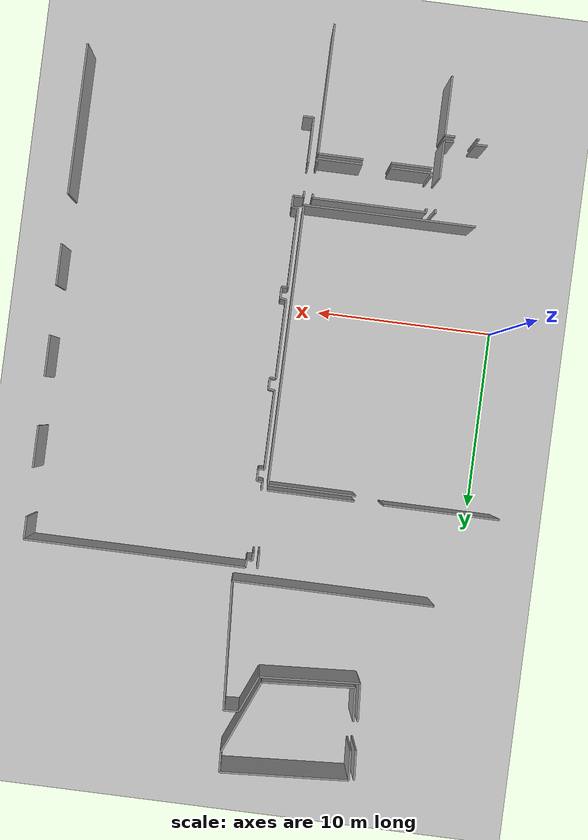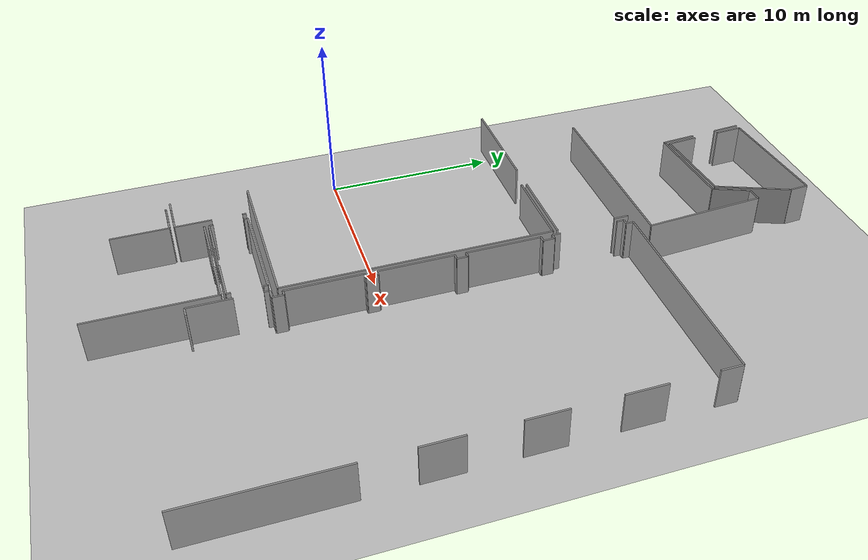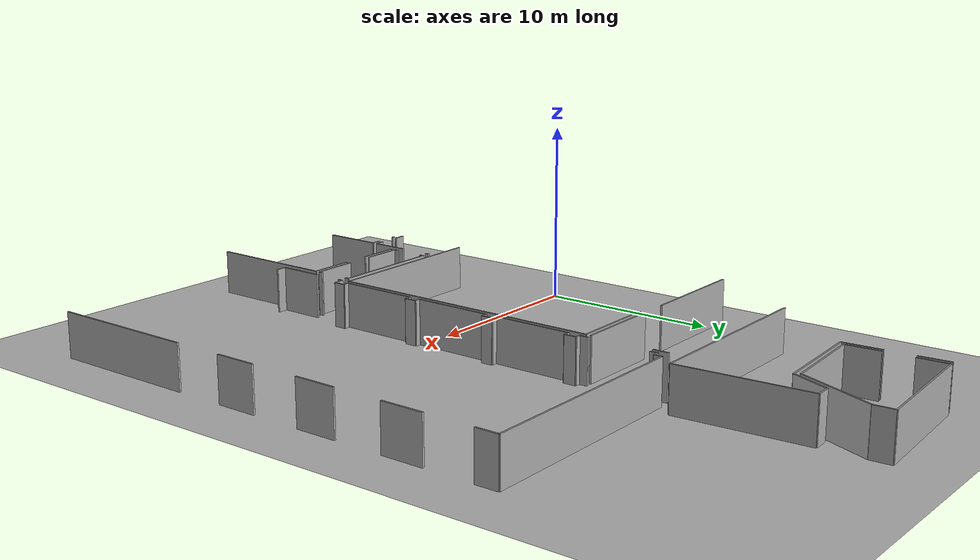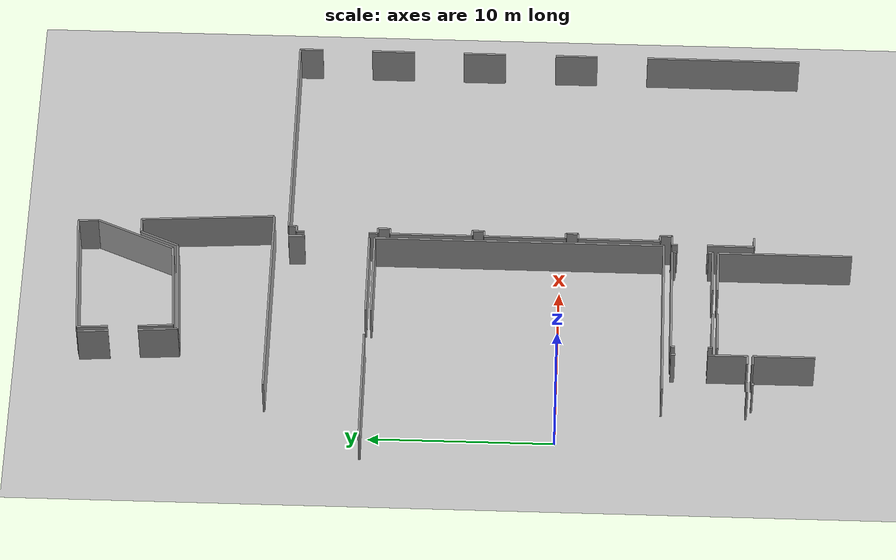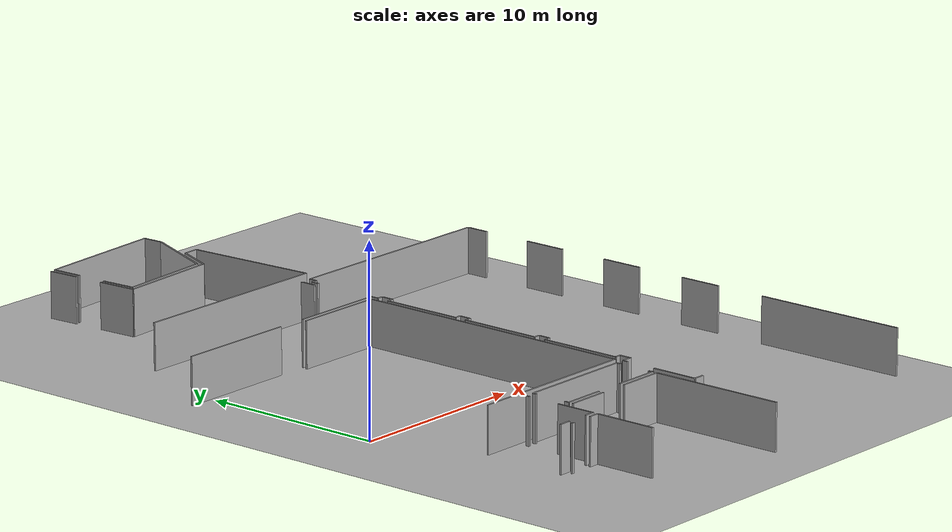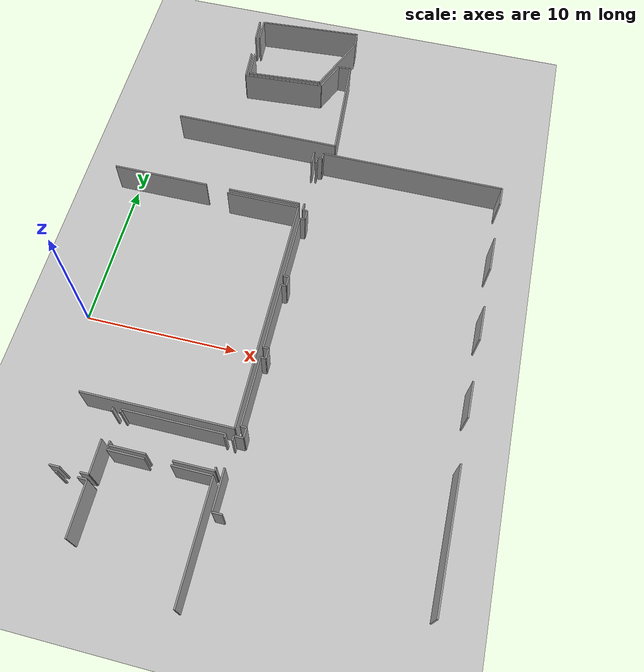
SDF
<sdf version="1.6">
 <world name="default">
  <model name="ground_plane">
   <static>1</static>
   <link name="link">
    <collision name="collision">
     <geometry><plane><normal>0 0 1</normal><size>100 100</size></plane></geometry>
     <surface><friction><ode><mu>100</mu><mu2>50</mu2></ode></friction></surface>
    </collision>
    <visual name="visual">
     <cast_shadows>0</cast_shadows>
     <geometry><plane><normal>0 0 1</normal><size>100 100</size></plane></geometry>
     <material>
      <script><uri>file://media/materials/scripts/gazebo.material</uri><name>Gazebo/Grey</name></script>
     </material>
    </visual>
   </link>
  </model>
  <model name="50025630">
   <static>1</static>
   <link name="Wall_0">
    <collision name="Wall_0_Collision">
     <geometry><box><size>11.3128901363 0.1 2.5</size></box></geometry>
     <pose>5.65644506817 0 1.25 0 0 0</pose>
    </collision>
    <visual name="Wall_0_Visual">
     <pose>5.65644506817 0 1.25 0 0 0</pose>
     <geometry><box><size>11.3128901363 0.1 2.5</size></box></geometry>
     <material>
      <script><uri>file://media/materials/scripts/gazebo.material</uri><name>Gazebo/Grey</name></script>
      <ambient>1 1 1 1</ambient>
     </material>
    </visual>
    <pose>38.7109228649 -10.6291077427 0 0 0 3.14159265359</pose>
   </link>
   <link name="Wall_3">
    <collision name="Wall_3_Collision">
     <geometry><box><size>1.67304815037 0.1 2.5</size></box></geometry>
     <pose>0.836524075186 0 1.25 0 0 0</pose>
    </collision>
    <visual name="Wall_3_Visual">
     <pose>0.836524075186 0 1.25 0 0 0</pose>
     <geometry><box><size>1.67304815037 0.1 2.5</size></box></geometry>
     <material>
      <script><uri>file://media/materials/scripts/gazebo.material</uri><name>Gazebo/Grey</name></script>
      <ambient>1 1 1 1</ambient>
     </material>
    </visual>
    <pose>30.5885938899 -0.484007188351 0 0 0 -1.50181448952</pose>
   </link>
   <link name="Wall_4">
    <collision name="Wall_4_Collision">
     <geometry><box><size>2.11933940147 0.1 2.5</size></box></geometry>
     <pose>1.05966970073 0 1.25 0 0 0</pose>
    </collision>
    <visual name="Wall_4_Visual">
     <pose>1.05966970073 0 1.25 0 0 0</pose>
     <geometry><box><size>2.11933940147 0.1 2.5</size></box></geometry>
     <material>
      <script><uri>file://media/materials/scripts/gazebo.material</uri><name>Gazebo/Grey</name></script>
      <ambient>1 1 1 1</ambient>
     </material>
    </visual>
    <pose>30.8034824133 -3.75216698311 0 0 0 -1.50477028506</pose>
   </link>
   <link name="Wall_5">
    <collision name="Wall_5_Collision">
     <geometry><box><size>5.61351934982 0.1 2.5</size></box></geometry>
     <pose>2.80675967491 0 1.25 0 0 0</pose>
    </collision>
    <visual name="Wall_5_Visual">
     <pose>2.80675967491 0 1.25 0 0 0</pose>
     <geometry><box><size>5.61351934982 0.1 2.5</size></box></geometry>
     <material>
      <script><uri>file://media/materials/scripts/gazebo.material</uri><name>Gazebo/Grey</name></script>
      <ambient>1 1 1 1</ambient>
     </material>
    </visual>
    <pose>30.9433123567 -5.866888498 0 0 0 0.0620307098715</pose>
   </link>
   <link name="Wall_6">
    <collision name="Wall_6_Collision">
     <geometry><box><size>2.22121321932 0.1 2.5</size></box></geometry>
     <pose>1.11060660966 0 1.25 0 0 0</pose>
    </collision>
    <visual name="Wall_6_Visual">
     <pose>1.11060660966 0 1.25 0 0 0</pose>
     <geometry><box><size>2.22121321932 0.1 2.5</size></box></geometry>
     <material>
      <script><uri>file://media/materials/scripts/gazebo.material</uri><name>Gazebo/Grey</name></script>
      <ambient>1 1 1 1</ambient>
     </material>
    </visual>
    <pose>36.546035294 -5.51890117287 0 0 0 1.16686553003</pose>
   </link>
   <link name="Wall_7">
    <collision name="Wall_7_Collision">
     <geometry><box><size>0.85191448878 0.1 2.5</size></box></geometry>
     <pose>0.42595724439 0 1.25 0 0 0</pose>
    </collision>
    <visual name="Wall_7_Visual">
     <pose>0.42595724439 0 1.25 0 0 0</pose>
     <geometry><box><size>0.85191448878 0.1 2.5</size></box></geometry>
     <material>
      <script><uri>file://media/materials/scripts/gazebo.material</uri><name>Gazebo/Grey</name></script>
      <ambient>1 1 1 1</ambient>
     </material>
    </visual>
    <pose>37.419051671 -3.47644417915 0 0 0 0.0451863527041</pose>
   </link>
   <link name="Wall_8">
    <collision name="Wall_8_Collision">
     <geometry><box><size>7.20464430718 0.1 2.5</size></box></geometry>
     <pose>3.60232215359 0 1.25 0 0 0</pose>
    </collision>
    <visual name="Wall_8_Visual">
     <pose>3.60232215359 0 1.25 0 0 0</pose>
     <geometry><box><size>7.20464430718 0.1 2.5</size></box></geometry>
     <material>
      <script><uri>file://media/materials/scripts/gazebo.material</uri><name>Gazebo/Grey</name></script>
      <ambient>1 1 1 1</ambient>
     </material>
    </visual>
    <pose>38.2700965855 -3.43796236911 0 0 0 -1.50957168</pose>
   </link>
   <link name="Wall_9">
    <collision name="Wall_9_Collision">
     <geometry><box><size>5.19604761874 0.1 2.5</size></box></geometry>
     <pose>2.59802380937 0 1.25 0 0 0</pose>
    </collision>
    <visual name="Wall_9_Visual">
     <pose>2.59802380937 0 1.25 0 0 0</pose>
     <geometry><box><size>5.19604761874 0.1 2.5</size></box></geometry>
     <material>
      <script><uri>file://media/materials/scripts/gazebo.material</uri><name>Gazebo/Grey</name></script>
      <ambient>1 1 1 1</ambient>
     </material>
    </visual>
    <pose>36.3642944684 -5.25092553198 0 0 0 -3.07346853266</pose>
   </link>
   <link name="Wall_10">
    <collision name="Wall_10_Collision">
     <geometry><box><size>1.88013856062 0.1 2.5</size></box></geometry>
     <pose>0.940069280308 0 1.25 0 0 0</pose>
    </collision>
    <visual name="Wall_10_Visual">
     <pose>0.940069280308 0 1.25 0 0 0</pose>
     <geometry><box><size>1.88013856062 0.1 2.5</size></box></geometry>
     <material>
      <script><uri>file://media/materials/scripts/gazebo.material</uri><name>Gazebo/Grey</name></script>
      <ambient>1 1 1 1</ambient>
     </material>
    </visual>
    <pose>31.1802993453 -5.60462797742 0 0 0 1.64144444996</pose>
   </link>
   <link name="Wall_11">
    <collision name="Wall_11_Collision">
     <geometry><box><size>1.65555187292 0.1 2.5</size></box></geometry>
     <pose>0.827775936462 0 1.25 0 0 0</pose>
    </collision>
    <visual name="Wall_11_Visual">
     <pose>0.827775936462 0 1.25 0 0 0</pose>
     <geometry><box><size>1.65555187292 0.1 2.5</size></box></geometry>
     <material>
      <script><uri>file://media/materials/scripts/gazebo.material</uri><name>Gazebo/Grey</name></script>
      <ambient>1 1 1 1</ambient>
     </material>
    </visual>
    <pose>30.9783650946 -2.10329127428 0 0 0 1.6212182583</pose>
   </link>
   <link name="Wall_12">
    <collision name="Wall_12_Collision">
     <geometry><box><size>7.18796307105 0.1 2.5</size></box></geometry>
     <pose>3.59398153552 0 1.25 0 0 0</pose>
    </collision>
    <visual name="Wall_12_Visual">
     <pose>3.59398153552 0 1.25 0 0 0</pose>
     <geometry><box><size>7.18796307105 0.1 2.5</size></box></geometry>
     <material>
      <script><uri>file://media/materials/scripts/gazebo.material</uri><name>Gazebo/Grey</name></script>
      <ambient>1 1 1 1</ambient>
     </material>
    </visual>
    <pose>30.8949243382 -0.449843469205 0 0 0 0.0626238097837</pose>
   </link>
   <link name="Wall_13">
    <collision name="Wall_13_Collision">
     <geometry><box><size>1.10530514953 0.1 2.5</size></box></geometry>
     <pose>0.552652574765 0 1.25 0 0 0</pose>
    </collision>
    <visual name="Wall_13_Visual">
     <pose>0.552652574765 0 1.25 0 0 0</pose>
     <geometry><box><size>1.10530514953 0.1 2.5</size></box></geometry>
     <material>
      <script><uri>file://media/materials/scripts/gazebo.material</uri><name>Gazebo/Grey</name></script>
      <ambient>1 1 1 1</ambient>
     </material>
    </visual>
    <pose>38.0687973482 -0.0 0 0 0 -1.51826157845</pose>
   </link>
   <link name="Wall_14">
    <collision name="Wall_14_Collision">
     <geometry><box><size>4.50614827792 0.1 2.5</size></box></geometry>
     <pose>2.25307413896 0 1.25 0 0 0</pose>
    </collision>
    <visual name="Wall_14_Visual">
     <pose>2.25307413896 0 1.25 0 0 0</pose>
     <geometry><box><size>4.50614827792 0.1 2.5</size></box></geometry>
     <material>
      <script><uri>file://media/materials/scripts/gazebo.material</uri><name>Gazebo/Grey</name></script>
      <ambient>1 1 1 1</ambient>
     </material>
    </visual>
    <pose>38.1268375699 -1.10378023457 0 0 0 -1.97266827118</pose>
   </link>
   <link name="Wall_15">
    <collision name="Wall_15_Collision">
     <geometry><box><size>4.88731687802 0.1 2.5</size></box></geometry>
     <pose>2.44365843901 0 1.25 0 0 0</pose>
    </collision>
    <visual name="Wall_15_Visual">
     <pose>2.44365843901 0 1.25 0 0 0</pose>
     <geometry><box><size>4.88731687802 0.1 2.5</size></box></geometry>
     <material>
      <script><uri>file://media/materials/scripts/gazebo.material</uri><name>Gazebo/Grey</name></script>
      <ambient>1 1 1 1</ambient>
     </material>
    </visual>
    <pose>37.4187976657 -15.8639039352 0 0 0 3.14159265359</pose>
   </link>
   <link name="Wall_16">
    <collision name="Wall_16_Collision">
     <geometry><box><size>6.50520393454 0.1 2.5</size></box></geometry>
     <pose>3.25260196727 0 1.25 0 0 0</pose>
    </collision>
    <visual name="Wall_16_Visual">
     <pose>3.25260196727 0 1.25 0 0 0</pose>
     <geometry><box><size>6.50520393454 0.1 2.5</size></box></geometry>
     <material>
      <script><uri>file://media/materials/scripts/gazebo.material</uri><name>Gazebo/Grey</name></script>
      <ambient>1 1 1 1</ambient>
     </material>
    </visual>
    <pose>30.9283260413 -15.8639039352 0 0 0 3.14159265359</pose>
   </link>
   <link name="Wall_22">
    <collision name="Wall_22_Collision">
     <geometry><box><size>0.875775525954 0.1 2.5</size></box></geometry>
     <pose>0.437887762977 0 1.25 0 0 0</pose>
    </collision>
    <visual name="Wall_22_Visual">
     <pose>0.437887762977 0 1.25 0 0 0</pose>
     <geometry><box><size>0.875775525954 0.1 2.5</size></box></geometry>
     <material>
      <script><uri>file://media/materials/scripts/gazebo.material</uri><name>Gazebo/Grey</name></script>
      <ambient>1 1 1 1</ambient>
     </material>
    </visual>
    <pose>37.4060973984 -11.476342577 0 0 0 -1.55629408033</pose>
   </link>
   <link name="Wall_23">
    <collision name="Wall_23_Collision">
     <geometry><box><size>9.59695701595 0.1 2.5</size></box></geometry>
     <pose>4.79847850797 0 1.25 0 0 0</pose>
    </collision>
    <visual name="Wall_23_Visual">
     <pose>4.79847850797 0 1.25 0 0 0</pose>
     <geometry><box><size>9.59695701595 0.1 2.5</size></box></geometry>
     <material>
      <script><uri>file://media/materials/scripts/gazebo.material</uri><name>Gazebo/Grey</name></script>
      <ambient>1 1 1 1</ambient>
     </material>
    </visual>
    <pose>37.4077484331 -31.8441423192 0 0 0 3.14159265359</pose>
   </link>
   <link name="Wall_29">
    <collision name="Wall_29_Collision">
     <geometry><box><size>4.92617969608 0.1 2.5</size></box></geometry>
     <pose>2.46308984804 0 1.25 0 0 0</pose>
    </collision>
    <visual name="Wall_29_Visual">
     <pose>2.46308984804 0 1.25 0 0 0</pose>
     <geometry><box><size>4.92617969608 0.1 2.5</size></box></geometry>
     <material>
      <script><uri>file://media/materials/scripts/gazebo.material</uri><name>Gazebo/Grey</name></script>
      <ambient>1 1 1 1</ambient>
     </material>
    </visual>
    <pose>32.4822037504 -16.1566450974 0 0 0 0.0</pose>
   </link>
   <link name="Wall_30">
    <collision name="Wall_30_Collision">
     <geometry><box><size>15.6874972347 0.1 2.5</size></box></geometry>
     <pose>7.84374861733 0 1.25 0 0 0</pose>
    </collision>
    <visual name="Wall_30_Visual">
     <pose>7.84374861733 0 1.25 0 0 0</pose>
     <geometry><box><size>15.6874972347 0.1 2.5</size></box></geometry>
     <material>
      <script><uri>file://media/materials/scripts/gazebo.material</uri><name>Gazebo/Grey</name></script>
      <ambient>1 1 1 1</ambient>
     </material>
    </visual>
    <pose>37.4083834465 -16.1566450974 0 0 0 -1.57083680574</pose>
   </link>
   <link name="Wall_40">
    <collision name="Wall_40_Collision">
     <geometry><box><size>0.596785562336 0.1 2.5</size></box></geometry>
     <pose>0.298392781168 0 1.25 0 0 0</pose>
    </collision>
    <visual name="Wall_40_Visual">
     <pose>0.298392781168 0 1.25 0 0 0</pose>
     <geometry><box><size>0.596785562336 0.1 2.5</size></box></geometry>
     <material>
      <script><uri>file://media/materials/scripts/gazebo.material</uri><name>Gazebo/Grey</name></script>
      <ambient>1 1 1 1</ambient>
     </material>
    </visual>
    <pose>38.0750204792 -36.7248550582 0 0 0 3.14159265359</pose>
   </link>
   <link name="Wall_41">
    <collision name="Wall_41_Collision">
     <geometry><box><size>2.52811521683 0.1 2.5</size></box></geometry>
     <pose>1.26405760841 0 1.25 0 0 0</pose>
    </collision>
    <visual name="Wall_41_Visual">
     <pose>1.26405760841 0 1.25 0 0 0</pose>
     <geometry><box><size>2.52811521683 0.1 2.5</size></box></geometry>
     <material>
      <script><uri>file://media/materials/scripts/gazebo.material</uri><name>Gazebo/Grey</name></script>
      <ambient>1 1 1 1</ambient>
     </material>
    </visual>
    <pose>37.4782349168 -36.7248550582 0 0 0 1.57079632679</pose>
   </link>
   <link name="Wall_42">
    <collision name="Wall_42_Collision">
     <geometry><box><size>0.315220635394 0.1 2.5</size></box></geometry>
     <pose>0.157610317697 0 1.25 0 0 0</pose>
    </collision>
    <visual name="Wall_42_Visual">
     <pose>0.157610317697 0 1.25 0 0 0</pose>
     <geometry><box><size>0.315220635394 0.1 2.5</size></box></geometry>
     <material>
      <script><uri>file://media/materials/scripts/gazebo.material</uri><name>Gazebo/Grey</name></script>
      <ambient>1 1 1 1</ambient>
     </material>
    </visual>
    <pose>37.4782349168 -32.5901560228 0 0 0 1.57079632679</pose>
   </link>
   <link name="Wall_43">
    <collision name="Wall_43_Collision">
     <geometry><box><size>0.582434260241 0.1 2.5</size></box></geometry>
     <pose>0.291217130121 0 1.25 0 0 0</pose>
    </collision>
    <visual name="Wall_43_Visual">
     <pose>0.291217130121 0 1.25 0 0 0</pose>
     <geometry><box><size>0.582434260241 0.1 2.5</size></box></geometry>
     <material>
      <script><uri>file://media/materials/scripts/gazebo.material</uri><name>Gazebo/Grey</name></script>
      <ambient>1 1 1 1</ambient>
     </material>
    </visual>
    <pose>37.4782349168 -32.2749353874 0 0 0 0.0</pose>
   </link>
   <link name="Wall_44">
    <collision name="Wall_44_Collision">
     <geometry><box><size>0.649237666453 0.1 2.5</size></box></geometry>
     <pose>0.324618833226 0 1.25 0 0 0</pose>
    </collision>
    <visual name="Wall_44_Visual">
     <pose>0.324618833226 0 1.25 0 0 0</pose>
     <geometry><box><size>0.649237666453 0.1 2.5</size></box></geometry>
     <material>
      <script><uri>file://media/materials/scripts/gazebo.material</uri><name>Gazebo/Grey</name></script>
      <ambient>1 1 1 1</ambient>
     </material>
    </visual>
    <pose>38.0606691771 -32.2749353874 0 0 0 1.57079632679</pose>
   </link>
   <link name="Wall_45">
    <collision name="Wall_45_Collision">
     <geometry><box><size>0.348495335827 0.1 2.5</size></box></geometry>
     <pose>0.174247667913 0 1.25 0 0 0</pose>
    </collision>
    <visual name="Wall_45_Visual">
     <pose>0.174247667913 0 1.25 0 0 0</pose>
     <geometry><box><size>0.348495335827 0.1 2.5</size></box></geometry>
     <material>
      <script><uri>file://media/materials/scripts/gazebo.material</uri><name>Gazebo/Grey</name></script>
      <ambient>1 1 1 1</ambient>
     </material>
    </visual>
    <pose>38.0606691771 -31.6256977209 0 0 0 3.14159265359</pose>
   </link>
   <link name="Wall_46">
    <collision name="Wall_46_Collision">
     <geometry><box><size>4.43506035802 0.1 2.5</size></box></geometry>
     <pose>2.21753017901 0 1.25 0 0 0</pose>
    </collision>
    <visual name="Wall_46_Visual">
     <pose>2.21753017901 0 1.25 0 0 0</pose>
     <geometry><box><size>4.43506035802 0.1 2.5</size></box></geometry>
     <material>
      <script><uri>file://media/materials/scripts/gazebo.material</uri><name>Gazebo/Grey</name></script>
      <ambient>1 1 1 1</ambient>
     </material>
    </visual>
    <pose>37.7121738413 -31.6256977209 0 0 0 1.57079632679</pose>
   </link>
   <link name="Wall_47">
    <collision name="Wall_47_Collision">
     <geometry><box><size>0.338335121954 0.1 2.5</size></box></geometry>
     <pose>0.169167560977 0 1.25 0 0 0</pose>
    </collision>
    <visual name="Wall_47_Visual">
     <pose>0.169167560977 0 1.25 0 0 0</pose>
     <geometry><box><size>0.338335121954 0.1 2.5</size></box></geometry>
     <material>
      <script><uri>file://media/materials/scripts/gazebo.material</uri><name>Gazebo/Grey</name></script>
      <ambient>1 1 1 1</ambient>
     </material>
    </visual>
    <pose>37.7121738413 -27.1906373629 0 0 0 0.0</pose>
   </link>
   <link name="Wall_48">
    <collision name="Wall_48_Collision">
     <geometry><box><size>0.669939102218 0.1 2.5</size></box></geometry>
     <pose>0.334969551109 0 1.25 0 0 0</pose>
    </collision>
    <visual name="Wall_48_Visual">
     <pose>0.334969551109 0 1.25 0 0 0</pose>
     <geometry><box><size>0.669939102218 0.1 2.5</size></box></geometry>
     <material>
      <script><uri>file://media/materials/scripts/gazebo.material</uri><name>Gazebo/Grey</name></script>
      <ambient>1 1 1 1</ambient>
     </material>
    </visual>
    <pose>38.0505089632 -27.1906373629 0 0 0 1.57079632679</pose>
   </link>
   <link name="Wall_49">
    <collision name="Wall_49_Collision">
     <geometry><box><size>0.335033052446 0.1 2.5</size></box></geometry>
     <pose>0.167516526223 0 1.25 0 0 0</pose>
    </collision>
    <visual name="Wall_49_Visual">
     <pose>0.167516526223 0 1.25 0 0 0</pose>
     <geometry><box><size>0.335033052446 0.1 2.5</size></box></geometry>
     <material>
      <script><uri>file://media/materials/scripts/gazebo.material</uri><name>Gazebo/Grey</name></script>
      <ambient>1 1 1 1</ambient>
     </material>
    </visual>
    <pose>38.0505089632 -26.5206982607 0 0 0 3.14159265359</pose>
   </link>
   <link name="Wall_50">
    <collision name="Wall_50_Collision">
     <geometry><box><size>4.43645738743 0.1 2.5</size></box></geometry>
     <pose>2.21822869371 0 1.25 0 0 0</pose>
    </collision>
    <visual name="Wall_50_Visual">
     <pose>2.21822869371 0 1.25 0 0 0</pose>
     <geometry><box><size>4.43645738743 0.1 2.5</size></box></geometry>
     <material>
      <script><uri>file://media/materials/scripts/gazebo.material</uri><name>Gazebo/Grey</name></script>
      <ambient>1 1 1 1</ambient>
     </material>
    </visual>
    <pose>37.7154759108 -26.5206982607 0 0 0 1.57079632679</pose>
   </link>
   <link name="Wall_51">
    <collision name="Wall_51_Collision">
     <geometry><box><size>0.345955282359 0.1 2.5</size></box></geometry>
     <pose>0.172977641179 0 1.25 0 0 0</pose>
    </collision>
    <visual name="Wall_51_Visual">
     <pose>0.172977641179 0 1.25 0 0 0</pose>
     <geometry><box><size>0.345955282359 0.1 2.5</size></box></geometry>
     <material>
      <script><uri>file://media/materials/scripts/gazebo.material</uri><name>Gazebo/Grey</name></script>
      <ambient>1 1 1 1</ambient>
     </material>
    </visual>
    <pose>37.7154759108 -22.0842408733 0 0 0 0.0</pose>
   </link>
   <link name="Wall_52">
    <collision name="Wall_52_Collision">
     <geometry><box><size>0.653301752002 0.1 2.5</size></box></geometry>
     <pose>0.326650876001 0 1.25 0 0 0</pose>
    </collision>
    <visual name="Wall_52_Visual">
     <pose>0.326650876001 0 1.25 0 0 0</pose>
     <geometry><box><size>0.653301752002 0.1 2.5</size></box></geometry>
     <material>
      <script><uri>file://media/materials/scripts/gazebo.material</uri><name>Gazebo/Grey</name></script>
      <ambient>1 1 1 1</ambient>
     </material>
    </visual>
    <pose>38.0614311931 -22.0842408733 0 0 0 1.57079632679</pose>
   </link>
   <link name="Wall_53">
    <collision name="Wall_53_Collision">
     <geometry><box><size>0.345955282359 0.1 2.5</size></box></geometry>
     <pose>0.172977641179 0 1.25 0 0 0</pose>
    </collision>
    <visual name="Wall_53_Visual">
     <pose>0.172977641179 0 1.25 0 0 0</pose>
     <geometry><box><size>0.345955282359 0.1 2.5</size></box></geometry>
     <material>
      <script><uri>file://media/materials/scripts/gazebo.material</uri><name>Gazebo/Grey</name></script>
      <ambient>1 1 1 1</ambient>
     </material>
    </visual>
    <pose>38.0614311931 -21.4309391213 0 0 0 3.14159265359</pose>
   </link>
   <link name="Wall_54">
    <collision name="Wall_54_Collision">
     <geometry><box><size>4.44204550506 0.1 2.5</size></box></geometry>
     <pose>2.22102275253 0 1.25 0 0 0</pose>
    </collision>
    <visual name="Wall_54_Visual">
     <pose>2.22102275253 0 1.25 0 0 0</pose>
     <geometry><box><size>4.44204550506 0.1 2.5</size></box></geometry>
     <material>
      <script><uri>file://media/materials/scripts/gazebo.material</uri><name>Gazebo/Grey</name></script>
      <ambient>1 1 1 1</ambient>
     </material>
    </visual>
    <pose>37.7154759108 -21.4309391213 0 0 0 1.57079632679</pose>
   </link>
   <link name="Wall_55">
    <collision name="Wall_55_Collision">
     <geometry><box><size>0.340494167402 0.1 2.5</size></box></geometry>
     <pose>0.170247083701 0 1.25 0 0 0</pose>
    </collision>
    <visual name="Wall_55_Visual">
     <pose>0.170247083701 0 1.25 0 0 0</pose>
     <geometry><box><size>0.340494167402 0.1 2.5</size></box></geometry>
     <material>
      <script><uri>file://media/materials/scripts/gazebo.material</uri><name>Gazebo/Grey</name></script>
      <ambient>1 1 1 1</ambient>
     </material>
    </visual>
    <pose>37.7154759108 -16.9888936162 0 0 0 0.0</pose>
   </link>
   <link name="Wall_56">
    <collision name="Wall_56_Collision">
     <geometry><box><size>0.680734329458 0.1 2.5</size></box></geometry>
     <pose>0.340367164729 0 1.25 0 0 0</pose>
    </collision>
    <visual name="Wall_56_Visual">
     <pose>0.340367164729 0 1.25 0 0 0</pose>
     <geometry><box><size>0.680734329458 0.1 2.5</size></box></geometry>
     <material>
      <script><uri>file://media/materials/scripts/gazebo.material</uri><name>Gazebo/Grey</name></script>
      <ambient>1 1 1 1</ambient>
     </material>
    </visual>
    <pose>38.0559700782 -16.9888936162 0 0 0 1.57079632679</pose>
   </link>
   <link name="Wall_57">
    <collision name="Wall_57_Collision">
     <geometry><box><size>0.323983819859 0.1 2.5</size></box></geometry>
     <pose>0.16199190993 0 1.25 0 0 0</pose>
    </collision>
    <visual name="Wall_57_Visual">
     <pose>0.16199190993 0 1.25 0 0 0</pose>
     <geometry><box><size>0.323983819859 0.1 2.5</size></box></geometry>
     <material>
      <script><uri>file://media/materials/scripts/gazebo.material</uri><name>Gazebo/Grey</name></script>
      <ambient>1 1 1 1</ambient>
     </material>
    </visual>
    <pose>38.0559700782 -16.3081592868 0 0 0 3.14159265359</pose>
   </link>
   <link name="Wall_58">
    <collision name="Wall_58_Collision">
     <geometry><box><size>0.500136527874 0.1 2.5</size></box></geometry>
     <pose>0.250068263937 0 1.25 0 0 0</pose>
    </collision>
    <visual name="Wall_58_Visual">
     <pose>0.250068263937 0 1.25 0 0 0</pose>
     <geometry><box><size>0.500136527874 0.1 2.5</size></box></geometry>
     <material>
      <script><uri>file://media/materials/scripts/gazebo.material</uri><name>Gazebo/Grey</name></script>
      <ambient>1 1 1 1</ambient>
     </material>
    </visual>
    <pose>37.7319862583 -16.3081592868 0 0 0 1.57079632679</pose>
   </link>
   <link name="Wall_59">
    <collision name="Wall_59_Collision">
     <geometry><box><size>0.425839963931 0.1 2.5</size></box></geometry>
     <pose>0.212919981966 0 1.25 0 0 0</pose>
    </collision>
    <visual name="Wall_59_Visual">
     <pose>0.212919981966 0 1.25 0 0 0</pose>
     <geometry><box><size>0.425839963931 0.1 2.5</size></box></geometry>
     <material>
      <script><uri>file://media/materials/scripts/gazebo.material</uri><name>Gazebo/Grey</name></script>
      <ambient>1 1 1 1</ambient>
     </material>
    </visual>
    <pose>37.7319862583 -12.3160842536 0 0 0 1.57079632679</pose>
   </link>
   <link name="Wall_60">
    <collision name="Wall_60_Collision">
     <geometry><box><size>0.336049073833 0.1 2.5</size></box></geometry>
     <pose>0.168024536916 0 1.25 0 0 0</pose>
    </collision>
    <visual name="Wall_60_Visual">
     <pose>0.168024536916 0 1.25 0 0 0</pose>
     <geometry><box><size>0.336049073833 0.1 2.5</size></box></geometry>
     <material>
      <script><uri>file://media/materials/scripts/gazebo.material</uri><name>Gazebo/Grey</name></script>
      <ambient>1 1 1 1</ambient>
     </material>
    </visual>
    <pose>37.7319862583 -11.8902442896 0 0 0 0.0</pose>
   </link>
   <link name="Wall_61">
    <collision name="Wall_61_Collision">
     <geometry><box><size>0.434222140376 0.1 2.5</size></box></geometry>
     <pose>0.217111070188 0 1.25 0 0 0</pose>
    </collision>
    <visual name="Wall_61_Visual">
     <pose>0.217111070188 0 1.25 0 0 0</pose>
     <geometry><box><size>0.434222140376 0.1 2.5</size></box></geometry>
     <material>
      <script><uri>file://media/materials/scripts/gazebo.material</uri><name>Gazebo/Grey</name></script>
      <ambient>1 1 1 1</ambient>
     </material>
    </visual>
    <pose>38.0680353321 -11.8902442896 0 0 0 1.57079632679</pose>
   </link>
   <link name="Wall_62">
    <collision name="Wall_62_Collision">
     <geometry><box><size>12.4085421998 0.1 2.5</size></box></geometry>
     <pose>6.20427109991 0 1.25 0 0 0</pose>
    </collision>
    <visual name="Wall_62_Visual">
     <pose>6.20427109991 0 1.25 0 0 0</pose>
     <geometry><box><size>12.4085421998 0.1 2.5</size></box></geometry>
     <material>
      <script><uri>file://media/materials/scripts/gazebo.material</uri><name>Gazebo/Grey</name></script>
      <ambient>1 1 1 1</ambient>
     </material>
    </visual>
    <pose>38.0680353321 -11.4560221493 0 0 0 0.0</pose>
   </link>
   <link name="Wall_63">
    <collision name="Wall_63_Collision">
     <geometry><box><size>1.26761368327 0.1 2.5</size></box></geometry>
     <pose>0.633806841634 0 1.25 0 0 0</pose>
    </collision>
    <visual name="Wall_63_Visual">
     <pose>0.633806841634 0 1.25 0 0 0</pose>
     <geometry><box><size>1.26761368327 0.1 2.5</size></box></geometry>
     <material>
      <script><uri>file://media/materials/scripts/gazebo.material</uri><name>Gazebo/Grey</name></script>
      <ambient>1 1 1 1</ambient>
     </material>
    </visual>
    <pose>50.476577532 -11.4560221493 0 0 0 -1.57079632679</pose>
   </link>
   <link name="Wall_64">
    <collision name="Wall_64_Collision">
     <geometry><box><size>2.36237672803 0.1 2.5</size></box></geometry>
     <pose>1.18118836402 0 1.25 0 0 0</pose>
    </collision>
    <visual name="Wall_64_Visual">
     <pose>1.18118836402 0 1.25 0 0 0</pose>
     <geometry><box><size>2.36237672803 0.1 2.5</size></box></geometry>
     <material>
      <script><uri>file://media/materials/scripts/gazebo.material</uri><name>Gazebo/Grey</name></script>
      <ambient>1 1 1 1</ambient>
     </material>
    </visual>
    <pose>50.476577532 -15.4605434444 0 0 0 -1.57079632679</pose>
   </link>
   <link name="Wall_65">
    <collision name="Wall_65_Collision">
     <geometry><box><size>2.32427592601 0.1 2.5</size></box></geometry>
     <pose>1.162137963 0 1.25 0 0 0</pose>
    </collision>
    <visual name="Wall_65_Visual">
     <pose>1.162137963 0 1.25 0 0 0</pose>
     <geometry><box><size>2.32427592601 0.1 2.5</size></box></geometry>
     <material>
      <script><uri>file://media/materials/scripts/gazebo.material</uri><name>Gazebo/Grey</name></script>
      <ambient>1 1 1 1</ambient>
     </material>
    </visual>
    <pose>50.476577532 -20.5694799876 0 0 0 -1.57079632679</pose>
   </link>
   <link name="Wall_66">
    <collision name="Wall_66_Collision">
     <geometry><box><size>2.32491093938 0.1 2.5</size></box></geometry>
     <pose>1.16245546969 0 1.25 0 0 0</pose>
    </collision>
    <visual name="Wall_66_Visual">
     <pose>1.16245546969 0 1.25 0 0 0</pose>
     <geometry><box><size>2.32491093938 0.1 2.5</size></box></geometry>
     <material>
      <script><uri>file://media/materials/scripts/gazebo.material</uri><name>Gazebo/Grey</name></script>
      <ambient>1 1 1 1</ambient>
     </material>
    </visual>
    <pose>50.476577532 -25.6751144612 0 0 0 -1.57079632679</pose>
   </link>
   <link name="Wall_67">
    <collision name="Wall_67_Collision">
     <geometry><box><size>8.43249102252 0.1 2.5</size></box></geometry>
     <pose>4.21624551126 0 1.25 0 0 0</pose>
    </collision>
    <visual name="Wall_67_Visual">
     <pose>4.21624551126 0 1.25 0 0 0</pose>
     <geometry><box><size>8.43249102252 0.1 2.5</size></box></geometry>
     <material>
      <script><uri>file://media/materials/scripts/gazebo.material</uri><name>Gazebo/Grey</name></script>
      <ambient>1 1 1 1</ambient>
     </material>
    </visual>
    <pose>50.476577532 -30.7811299428 0 0 0 -1.57305549519</pose>
   </link>
   <link name="Wall_68">
    <collision name="Wall_68_Collision">
     <geometry><box><size>0.545222476933 0.1 2.5</size></box></geometry>
     <pose>0.272611238467 0 1.25 0 0 0</pose>
    </collision>
    <visual name="Wall_68_Visual">
     <pose>0.272611238467 0 1.25 0 0 0</pose>
     <geometry><box><size>0.545222476933 0.1 2.5</size></box></geometry>
     <material>
      <script><uri>file://media/materials/scripts/gazebo.material</uri><name>Gazebo/Grey</name></script>
      <ambient>1 1 1 1</ambient>
     </material>
    </visual>
    <pose>30.1355753539 -36.375343701 0 0 0 3.14159265359</pose>
   </link>
   <link name="Wall_69">
    <collision name="Wall_69_Collision">
     <geometry><box><size>0.658889869632 0.1 2.5</size></box></geometry>
     <pose>0.329444934816 0 1.25 0 0 0</pose>
    </collision>
    <visual name="Wall_69_Visual">
     <pose>0.329444934816 0 1.25 0 0 0</pose>
     <geometry><box><size>0.658889869632 0.1 2.5</size></box></geometry>
     <material>
      <script><uri>file://media/materials/scripts/gazebo.material</uri><name>Gazebo/Grey</name></script>
      <ambient>1 1 1 1</ambient>
     </material>
    </visual>
    <pose>28.3828114582 -36.375343701 0 0 0 3.14159265359</pose>
   </link>
   <link name="Wall_74">
    <collision name="Wall_74_Collision">
     <geometry><box><size>0.222762689155 0.1 2.5</size></box></geometry>
     <pose>0.111381344577 0 1.25 0 0 0</pose>
    </collision>
    <visual name="Wall_74_Visual">
     <pose>0.111381344577 0 1.25 0 0 0</pose>
     <geometry><box><size>0.222762689155 0.1 2.5</size></box></geometry>
     <material>
      <script><uri>file://media/materials/scripts/gazebo.material</uri><name>Gazebo/Grey</name></script>
      <ambient>1 1 1 1</ambient>
     </material>
    </visual>
    <pose>30.1189380036 -32.2950018098 0 0 0 -1.57079632679</pose>
   </link>
   <link name="Wall_75">
    <collision name="Wall_75_Collision">
     <geometry><box><size>2.11173899048 0.1 2.5</size></box></geometry>
     <pose>1.05586949524 0 1.25 0 0 0</pose>
    </collision>
    <visual name="Wall_75_Visual">
     <pose>1.05586949524 0 1.25 0 0 0</pose>
     <geometry><box><size>2.11173899048 0.1 2.5</size></box></geometry>
     <material>
      <script><uri>file://media/materials/scripts/gazebo.material</uri><name>Gazebo/Grey</name></script>
      <ambient>1 1 1 1</ambient>
     </material>
    </visual>
    <pose>30.1189380036 -34.2636702503 0 0 0 -1.56291773838</pose>
   </link>
   <link name="Wall_76">
    <collision name="Wall_76_Collision">
     <geometry><box><size>2.53027426227 0.1 2.5</size></box></geometry>
     <pose>1.26513713114 0 1.25 0 0 0</pose>
    </collision>
    <visual name="Wall_76_Visual">
     <pose>1.26513713114 0 1.25 0 0 0</pose>
     <geometry><box><size>2.53027426227 0.1 2.5</size></box></geometry>
     <material>
      <script><uri>file://media/materials/scripts/gazebo.material</uri><name>Gazebo/Grey</name></script>
      <ambient>1 1 1 1</ambient>
     </material>
    </visual>
    <pose>37.0075630092 -34.503705303 0 0 0 3.14159265359</pose>
   </link>
   <link name="Wall_77">
    <collision name="Wall_77_Collision">
     <geometry><box><size>2.26560069089 0.1 2.5</size></box></geometry>
     <pose>1.13280034545 0 1.25 0 0 0</pose>
    </collision>
    <visual name="Wall_77_Visual">
     <pose>1.13280034545 0 1.25 0 0 0</pose>
     <geometry><box><size>2.26560069089 0.1 2.5</size></box></geometry>
     <material>
      <script><uri>file://media/materials/scripts/gazebo.material</uri><name>Gazebo/Grey</name></script>
      <ambient>1 1 1 1</ambient>
     </material>
    </visual>
    <pose>32.8914063641 -34.503705303 0 0 0 3.14159265359</pose>
   </link>
   <link name="Wall_78">
    <collision name="Wall_78_Collision">
     <geometry><box><size>0.244353143634 0.1 2.5</size></box></geometry>
     <pose>0.122176571817 0 1.25 0 0 0</pose>
    </collision>
    <visual name="Wall_78_Visual">
     <pose>0.122176571817 0 1.25 0 0 0</pose>
     <geometry><box><size>0.244353143634 0.1 2.5</size></box></geometry>
     <material>
      <script><uri>file://media/materials/scripts/gazebo.material</uri><name>Gazebo/Grey</name></script>
      <ambient>1 1 1 1</ambient>
     </material>
    </visual>
    <pose>30.6258056732 -34.503705303 0 0 0 1.57079632679</pose>
   </link>
   <link name="Wall_79">
    <collision name="Wall_79_Collision">
     <geometry><box><size>0.217809584892 0.1 2.5</size></box></geometry>
     <pose>0.108904792446 0 1.25 0 0 0</pose>
    </collision>
    <visual name="Wall_79_Visual">
     <pose>0.108904792446 0 1.25 0 0 0</pose>
     <geometry><box><size>0.217809584892 0.1 2.5</size></box></geometry>
     <material>
      <script><uri>file://media/materials/scripts/gazebo.material</uri><name>Gazebo/Grey</name></script>
      <ambient>1 1 1 1</ambient>
     </material>
    </visual>
    <pose>30.6258056732 -32.5093823225 0 0 0 1.57079632679</pose>
   </link>
   <link name="Wall_80">
    <collision name="Wall_80_Collision">
     <geometry><box><size>6.36105590023 0.1 2.5</size></box></geometry>
     <pose>3.18052795011 0 1.25 0 0 0</pose>
    </collision>
    <visual name="Wall_80_Visual">
     <pose>3.18052795011 0 1.25 0 0 0</pose>
     <geometry><box><size>6.36105590023 0.1 2.5</size></box></geometry>
     <material>
      <script><uri>file://media/materials/scripts/gazebo.material</uri><name>Gazebo/Grey</name></script>
      <ambient>1 1 1 1</ambient>
     </material>
    </visual>
    <pose>30.6258056732 -32.2915727376 0 0 0 0.0</pose>
   </link>
   <link name="Wall_81">
    <collision name="Wall_81_Collision">
     <geometry><box><size>0.225048737276 0.1 2.5</size></box></geometry>
     <pose>0.112524368638 0 1.25 0 0 0</pose>
    </collision>
    <visual name="Wall_81_Visual">
     <pose>0.112524368638 0 1.25 0 0 0</pose>
     <geometry><box><size>0.225048737276 0.1 2.5</size></box></geometry>
     <material>
      <script><uri>file://media/materials/scripts/gazebo.material</uri><name>Gazebo/Grey</name></script>
      <ambient>1 1 1 1</ambient>
     </material>
    </visual>
    <pose>36.9868615734 -32.2915727376 0 0 0 -1.57079632679</pose>
   </link>
   <link name="Wall_82">
    <collision name="Wall_82_Collision">
     <geometry><box><size>0.241938359463 0.1 2.5</size></box></geometry>
     <pose>0.120969179731 0 1.25 0 0 0</pose>
    </collision>
    <visual name="Wall_82_Visual">
     <pose>0.120969179731 0 1.25 0 0 0</pose>
     <geometry><box><size>0.241938359463 0.1 2.5</size></box></geometry>
     <material>
      <script><uri>file://media/materials/scripts/gazebo.material</uri><name>Gazebo/Grey</name></script>
      <ambient>1 1 1 1</ambient>
     </material>
    </visual>
    <pose>36.9868615734 -34.2626542289 0 0 0 -1.48512665529</pose>
   </link>
   <link name="Wall_85">
    <collision name="Wall_85_Collision">
     <geometry><box><size>2.2870641427 0.1 2.5</size></box></geometry>
     <pose>1.14353207135 0 1.25 0 0 0</pose>
    </collision>
    <visual name="Wall_85_Visual">
     <pose>1.14353207135 0 1.25 0 0 0</pose>
     <geometry><box><size>2.2870641427 0.1 2.5</size></box></geometry>
     <material>
      <script><uri>file://media/materials/scripts/gazebo.material</uri><name>Gazebo/Grey</name></script>
      <ambient>1 1 1 1</ambient>
     </material>
    </visual>
    <pose>30.6119623818 -34.7709189278 0 0 0 0.0</pose>
   </link>
   <link name="Wall_86">
    <collision name="Wall_86_Collision">
     <geometry><box><size>2.51808200563 0.1 2.5</size></box></geometry>
     <pose>1.25904100281 0 1.25 0 0 0</pose>
    </collision>
    <visual name="Wall_86_Visual">
     <pose>1.25904100281 0 1.25 0 0 0</pose>
     <geometry><box><size>2.51808200563 0.1 2.5</size></box></geometry>
     <material>
      <script><uri>file://media/materials/scripts/gazebo.material</uri><name>Gazebo/Grey</name></script>
      <ambient>1 1 1 1</ambient>
     </material>
    </visual>
    <pose>34.4671285331 -34.7709189278 0 0 0 0.0</pose>
   </link>
   <link name="Wall_87">
    <collision name="Wall_87_Collision">
     <geometry><box><size>7.25439391563 0.1 2.5</size></box></geometry>
     <pose>3.62719695781 0 1.25 0 0 0</pose>
    </collision>
    <visual name="Wall_87_Visual">
     <pose>3.62719695781 0 1.25 0 0 0</pose>
     <geometry><box><size>7.25439391563 0.1 2.5</size></box></geometry>
     <material>
      <script><uri>file://media/materials/scripts/gazebo.material</uri><name>Gazebo/Grey</name></script>
      <ambient>1 1 1 1</ambient>
     </material>
    </visual>
    <pose>36.9852105387 -34.7709189278 0 0 0 -1.57021859577</pose>
   </link>
   <link name="Wall_97">
    <collision name="Wall_97_Collision">
     <geometry><box><size>0.156848301657 0.1 2.5</size></box></geometry>
     <pose>0.0784241508284 0 1.25 0 0 0</pose>
    </collision>
    <visual name="Wall_97_Visual">
     <pose>0.0784241508284 0 1.25 0 0 0</pose>
     <geometry><box><size>0.156848301657 0.1 2.5</size></box></geometry>
     <material>
      <script><uri>file://media/materials/scripts/gazebo.material</uri><name>Gazebo/Grey</name></script>
      <ambient>1 1 1 1</ambient>
     </material>
    </visual>
    <pose>28.2060237368 -36.6641477803 0 0 0 0.0</pose>
   </link>
   <link name="Wall_98">
    <collision name="Wall_98_Collision">
     <geometry><box><size>0.576211129244 0.1 2.5</size></box></geometry>
     <pose>0.288105564622 0 1.25 0 0 0</pose>
    </collision>
    <visual name="Wall_98_Visual">
     <pose>0.288105564622 0 1.25 0 0 0</pose>
     <geometry><box><size>0.576211129244 0.1 2.5</size></box></geometry>
     <material>
      <script><uri>file://media/materials/scripts/gazebo.material</uri><name>Gazebo/Grey</name></script>
      <ambient>1 1 1 1</ambient>
     </material>
    </visual>
    <pose>29.5587292112 -36.6641477803 0 0 0 0.0</pose>
   </link>
   <link name="Wall_99">
    <collision name="Wall_99_Collision">
     <geometry><box><size>3.32595657369 0.1 2.5</size></box></geometry>
     <pose>1.66297828684 0 1.25 0 0 0</pose>
    </collision>
    <visual name="Wall_99_Visual">
     <pose>1.66297828684 0 1.25 0 0 0</pose>
     <geometry><box><size>3.32595657369 0.1 2.5</size></box></geometry>
     <material>
      <script><uri>file://media/materials/scripts/gazebo.material</uri><name>Gazebo/Grey</name></script>
      <ambient>1 1 1 1</ambient>
     </material>
    </visual>
    <pose>30.1349403405 -36.6641477803 0 0 0 -1.56827609385</pose>
   </link>
   <pose>-25.75 26.2274655982 0 0 0 0</pose>
  </model>
 </world>
</sdf>
